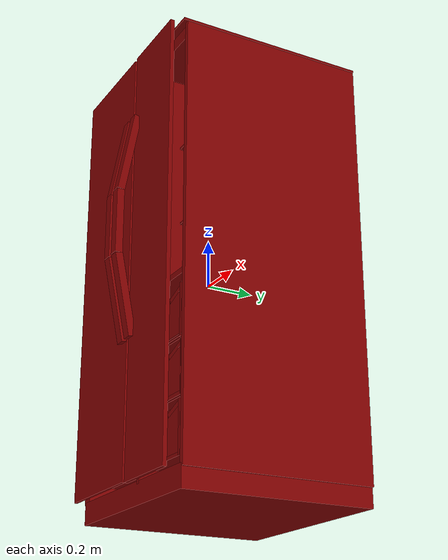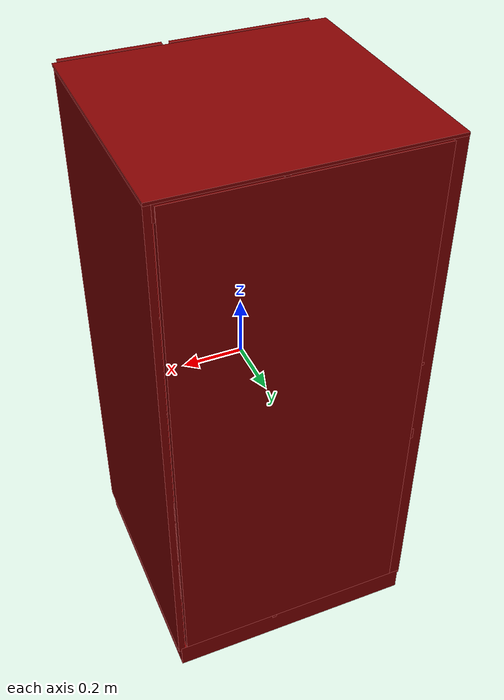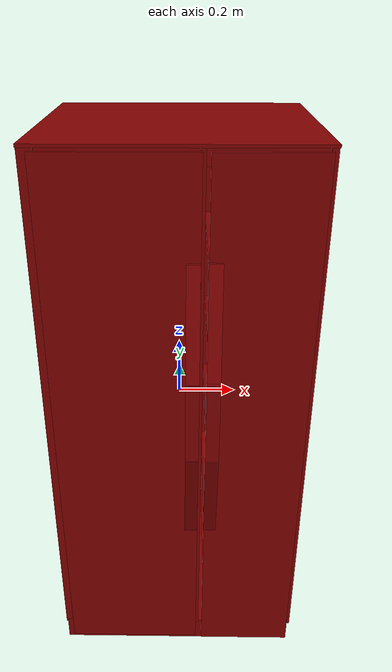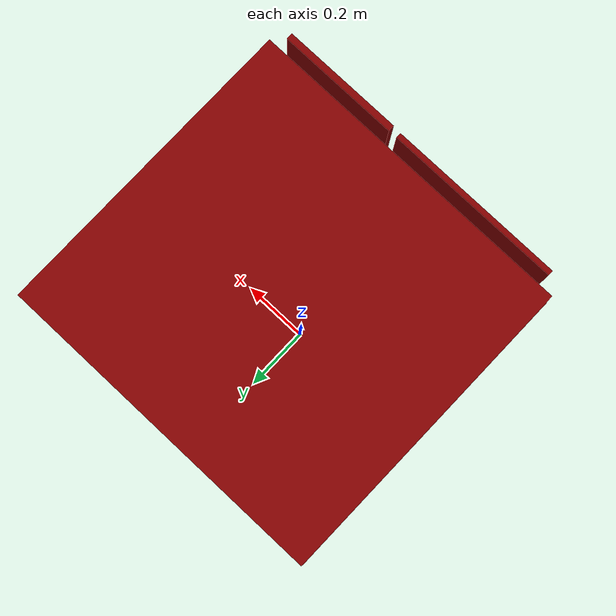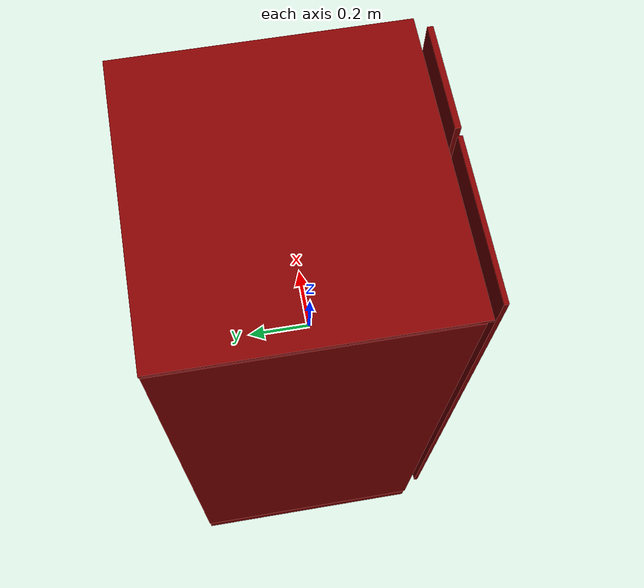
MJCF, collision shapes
<mujoco model="model">
  <compiler angle="radian"/>
  <asset>
    <mesh file="visuals/Body001.obj" name="Body001_vis"/>
    <mesh file="visuals/Door001.obj" name="Door001_vis"/>
    <mesh file="visuals/Door002.obj" name="Door002_vis"/>
    <mesh file="visuals/Drawer001_Clear.obj" name="Drawer001_Clear_vis"/>
    <mesh file="visuals/Drawer002_Clear.obj" name="Drawer002_Clear_vis"/>
    <mesh file="visuals/Drawer003.obj" name="Drawer003_vis"/>
    <mesh file="visuals/Drawer004.obj" name="Drawer004_vis"/>
    <mesh file="visuals/Drawer005.obj" name="Drawer005_vis"/>
    <mesh file="visuals/Drawer006.obj" name="Drawer006_vis"/>
    <mesh file="visuals/Drawer007.obj" name="Drawer007_vis"/>
    <mesh file="visuals/Drawer008.obj" name="Drawer008_vis"/>
    <texture file="visuals/T_BC001.png" name="Body001_material" type="2d"/>
    <material name="Body001_material" rgba="1 1 1 1.0" texture="Body001_material" shininess="0.4472135901451111" specular="0.3103448502657381"/>
    <texture file="visuals/T_BC001.png" name="Door001_material" type="2d"/>
    <material name="Door001_material" rgba="1 1 1 1.0" texture="Door001_material" shininess="0.4472135901451111" specular="0.3103448502657381"/>
    <texture file="visuals/T_BC001.png" name="Door002_material" type="2d"/>
    <material name="Door002_material" rgba="1 1 1 1.0" texture="Door002_material" shininess="0.4472135901451111" specular="0.3103448502657381"/>
    <material name="Drawer001_Clear_material" rgba="1.0 1.0 1.0 0.2653976380825043" shininess="0.4472135901451111" specular="0.3103448502657381"/>
    <material name="Drawer002_Clear_material" rgba="1.0 1.0 1.0 0.2653976380825043" shininess="0.4472135901451111" specular="0.3103448502657381"/>
    <texture file="visuals/T_BC001.png" name="Drawer003_material" type="2d"/>
    <material name="Drawer003_material" rgba="1 1 1 1.0" texture="Drawer003_material" shininess="0.4472135901451111" specular="0.3103448502657381"/>
    <texture file="visuals/T_BC001.png" name="Drawer004_material" type="2d"/>
    <material name="Drawer004_material" rgba="1 1 1 1.0" texture="Drawer004_material" shininess="0.4472135901451111" specular="0.3103448502657381"/>
    <texture file="visuals/T_BC001.png" name="Drawer005_material" type="2d"/>
    <material name="Drawer005_material" rgba="1 1 1 1.0" texture="Drawer005_material" shininess="0.4472135901451111" specular="0.3103448502657381"/>
    <texture file="visuals/T_BC001.png" name="Drawer006_material" type="2d"/>
    <material name="Drawer006_material" rgba="1 1 1 1.0" texture="Drawer006_material" shininess="0.4472135901451111" specular="0.3103448502657381"/>
    <texture file="visuals/T_BC001.png" name="Drawer007_material" type="2d"/>
    <material name="Drawer007_material" rgba="1 1 1 1.0" texture="Drawer007_material" shininess="0.4472135901451111" specular="0.3103448502657381"/>
    <texture file="visuals/T_BC001.png" name="Drawer008_material" type="2d"/>
    <material name="Drawer008_material" rgba="1 1 1 1.0" texture="Drawer008_material" shininess="0.4472135901451111" specular="0.3103448502657381"/>
  </asset>
  <default>
    <default class="visual">
      <geom conaffinity="0" contype="0" group="1" type="mesh"/>
    </default>
    <default class="collision">
      <geom group="0" rgba="0.5 0 0 0.5"/>
    </default>
    <default class="spawn">
      <geom group="0" rgba="1 1 1 0.5" contype="0" conaffinity="0"/>
      <site group="0" rgba="1 1 1 0.5"/>
    </default>
    <default class="region">
      <geom group="1" conaffinity="0" contype="0" rgba="0 1 0 0"/>
    </default>
  </default>
  <worldbody>
    <body>
      <body name="object">
        <geom mesh="Body001_vis" type="mesh" solimp="0.998 0.998 0.001" solref="0.001 1" density="100" friction="0.95 0.3 0.1" class="visual" material="Body001_material"/>
        <geom class="collision" type="box" pos="-0.003055 0.071175 -0.886040" size="0.42254406213760376 0.3943433463573456 0.044781748205423355" quat="1.0 0.0 0.0 0.0"/>
        <geom class="collision" type="box" pos="-0.408601 0.071175 0.033476" size="0.021828489378094673 0.39434152841567993 0.8861522674560547" quat="1.0 0.0 0.0 0.0"/>
        <geom class="collision" type="box" pos="0.418377 0.071175 0.033476" size="0.010383921675384045 0.39431092143058777 0.8861758708953857" quat="1.0 0.0 0.0 0.0"/>
        <geom class="collision" type="box" pos="0.004228 0.455715 0.037261" size="0.39516299962997437 0.011107896454632282 0.8771654367446899" quat="1.0 0.0 0.0 0.0"/>
        <geom class="collision" type="box" pos="-0.000058 0.064919 0.926469" size="0.4288399815559387 0.40311184525489807 0.004484101198613644" quat="1.0 0.0 0.0 0.0"/>
        <geom class="collision" type="box" pos="0.069767 0.071175 0.033476" size="0.007711742073297501 0.394353449344635 0.8863192200660706" quat="1.0 0.0 0.0 0.0"/>
        <geom class="collision" type="box" pos="-0.163365 0.084764 0.177211" size="0.2366134375333786 0.3807549774646759 0.005504774861037731" quat="1.0 0.0 0.0 0.0"/>
        <geom class="collision" type="box" pos="-0.163365 0.084764 -0.116795" size="0.23661182820796967 0.38075974583625793 0.020517824217677116" quat="1.0 0.0 0.0 0.0"/>
        <geom class="collision" type="box" pos="0.251401 0.058927 -0.133869" size="0.15414448082447052 0.3807351887226105 0.01137218065559864" quat="1.0 0.0 0.0 0.0"/>
        <geom class="collision" type="box" pos="-0.169605 0.056461 0.416973" size="0.21129442751407623 0.35190802812576294 0.012146642431616783" quat="1.0 0.0 0.0 0.0"/>
        <geom class="collision" type="box" pos="0.247838 0.109864 0.546151" size="0.15461844205856323 0.2929384708404541 0.004145545419305563" quat="1.0 0.0 0.0 0.0"/>
        <geom class="collision" type="box" pos="0.251269 0.109864 0.204940" size="0.15199317038059235 0.2910923361778259 0.004145502578467131" quat="1.0 0.0 0.0 0.0"/>
        <geom class="collision" type="box" pos="-0.003549 0.076517 0.895617" size="0.42538413405418396 0.3858272135257721 0.02711375616490841" quat="1.0 0.0 0.0 0.0"/>
        <geom class="collision" type="box" pos="-0.175211 -0.001681 -0.355121" size="0.20460020005702972 0.3087306618690491 0.0020589728374034166" quat="1.0 0.0 0.0 0.0"/>
        <geom class="collision" type="box" pos="-0.175211 -0.001681 -0.571262" size="0.20460020005702972 0.30873045325279236 0.00205897050909698" quat="1.0 0.0 0.0 0.0"/>
        <geom class="collision" type="box" pos="0.250226 -0.001681 -0.599374" size="0.15879812836647034 0.30873170495033264 0.002058980520814657" quat="1.0 0.0 0.0 0.0"/>
        <geom class="collision" type="box" pos="0.250226 -0.001681 -0.383440" size="0.1587982475757599 0.30873173475265503 0.002058981219306588" quat="1.0 0.0 0.0 0.0"/>
        <body name="Door001">
          <joint axis="0.0 0.0 -1.0" pos="-0.416145 -0.371712 0.027817" limited="true" name="Door001_joint" range="0.0 1.5707963267948966" type="hinge" damping="1" frictionloss="1" armature=".01" stiffness="0.05"/>
          <geom mesh="Door001_vis" type="mesh" solimp="0.998 0.998 0.001" solref="0.001 1" density="100" friction="0.95 0.3 0.1" class="visual" material="Door001_material"/>
          <geom class="collision" type="box" pos="-0.162656 -0.377580 0.033476" size="0.22955015301704407 0.006571868434548378 0.8863376975059509" quat="1.0 0.0 0.0 0.0"/>
          <geom class="collision" type="box" pos="0.045440 -0.454934 0.147930" size="0.02054559253156185 0.015073158778250217 0.13386672735214233" quat="1.0 0.0 0.0 0.0"/>
          <geom class="collision" type="box" pos="0.045440 -0.422987 0.450286" size="0.020545627921819687 0.015073212794959545 0.17567604780197144" quat="0.9959166646003723 -0.09027764201164246 5.8124575437059915e-18 3.734763892659079e-19"/>
          <geom class="collision" type="box" pos="0.045440 -0.420976 -0.151267" size="0.020545627921819687 0.015073210932314396 0.16911983489990234" quat="0.9952443242073059 0.09741028398275375 5.640280312793385e-18 1.4530146072651087e-18"/>
        </body>
        <body name="Door002">
          <joint axis="0.0 0.0 1.0" pos="0.411259 -0.378499 0.027395" limited="true" name="Door002_joint" range="0.0 1.5707963267948966" type="hinge" damping="1" frictionloss="1" armature=".01" stiffness="0.05"/>
          <geom mesh="Door002_vis" type="mesh" solimp="0.998 0.998 0.001" solref="0.001 1" density="100" friction="0.95 0.3 0.1" class="visual" material="Door002_material"/>
          <geom class="collision" type="box" pos="0.247256 -0.378333 0.030779" size="0.15779338777065277 0.008189458400011063 0.8890048861503601" quat="1.0 0.0 0.0 0.0"/>
          <geom class="collision" type="box" pos="0.107994 -0.421046 -0.150913" size="0.020545627921819687 0.015073212794959545 0.16665861010551453" quat="0.9952443242073059 0.09741028398275375 5.640280312793385e-18 1.4530146072651087e-18"/>
          <geom class="collision" type="box" pos="0.107994 -0.422140 0.454918" size="0.020545627921819687 0.015073212794959545 0.17384988069534302" quat="0.9959166646003723 -0.09027764201164246 5.8124575437059915e-18 3.734763892659079e-19"/>
          <geom class="collision" type="box" pos="0.107994 -0.454934 0.147930" size="0.020545611158013344 0.015073185786604881 0.13386684656143188" quat="1.0 0.0 0.0 0.0"/>
        </body>
        <body name="Drawer001_Clear">
          <joint axis="0.0 -1.0 0.0" pos="-0.175046 -0.008141 0.273273" limited="true" name="Drawer001_Clear_joint" range="0.0 0.45" type="slide" damping="1" frictionloss="1" armature=".01" stiffness="0.05"/>
          <geom mesh="Drawer001_Clear_vis" type="mesh" solimp="0.998 0.998 0.001" solref="0.001 1" density="100" friction="0.95 0.3 0.1" class="visual" material="Drawer001_Clear_material"/>
          <geom class="collision" type="box" pos="-0.174730 0.294483 0.277211" size="0.1955537497997284 0.0023311381228268147 0.08908506482839584" quat="1.0 0.0 0.0 0.0"/>
          <geom class="collision" type="box" pos="-0.174730 -0.310531 0.277211" size="0.19555382430553436 0.0023311336990445852 0.08908488601446152" quat="1.0 0.0 0.0 0.0"/>
          <geom class="collision" type="box" pos="-0.370104 -0.008916 0.277211" size="0.0015052409144118428 0.305454283952713 0.089084692299366" quat="1.0 0.0 0.0 0.0"/>
          <geom class="collision" type="box" pos="0.021025 -0.008916 0.277211" size="0.001505241496488452 0.30545371770858765 0.08908451348543167" quat="1.0 0.0 0.0 0.0"/>
          <geom class="collision" type="box" pos="-0.171064 -0.008916 0.191932" size="0.1947062909603119 0.3054531514644623 0.0075452858582139015" quat="1.0 0.0 0.0 0.0"/>
        </body>
        <body name="Drawer002_Clear">
          <joint axis="0.0 -1.0 0.0" pos="-0.175046 -0.008425 0.063579" limited="true" name="Drawer002_Clear_joint" range="0.0 0.45" type="slide" damping="1" frictionloss="1" armature=".01" stiffness="0.05"/>
          <geom mesh="Drawer002_Clear_vis" type="mesh" solimp="0.998 0.998 0.001" solref="0.001 1" density="100" friction="0.95 0.3 0.1" class="visual" material="Drawer002_Clear_material"/>
          <geom class="collision" type="box" pos="-0.171064 -0.008916 -0.036560" size="0.19470636546611786 0.3054525852203369 0.005770187824964523" quat="1.0 0.0 0.0 0.0"/>
          <geom class="collision" type="box" pos="0.021025 -0.008916 0.061646" size="0.0015052432427182794 0.30545201897621155 0.10378534346818924" quat="1.0 0.0 0.0 0.0"/>
          <geom class="collision" type="box" pos="-0.370104 -0.008916 0.061646" size="0.0015052438247948885 0.3054514527320862 0.10378517210483551" quat="1.0 0.0 0.0 0.0"/>
          <geom class="collision" type="box" pos="-0.176061 -0.308036 0.061646" size="0.19554020464420319 0.002331102965399623 0.10378502309322357" quat="1.0 0.0 0.0 0.0"/>
          <geom class="collision" type="box" pos="-0.176061 0.294483 0.061646" size="0.19554027915000916 0.0023310985416173935 0.10378485172986984" quat="1.0 0.0 0.0 0.0"/>
        </body>
        <body name="Drawer003">
          <joint axis="0.0 -1.0 0.0" pos="-0.175046 -0.008312 -0.247819" limited="true" name="Drawer003_joint" range="0.0 0.45" type="slide" damping="1" frictionloss="1" armature=".01" stiffness="0.05"/>
          <geom mesh="Drawer003_vis" type="mesh" solimp="0.998 0.998 0.001" solref="0.001 1" density="100" friction="0.95 0.3 0.1" class="visual" material="Drawer003_material"/>
          <geom class="collision" type="box" pos="-0.175360 0.284418 -0.249110" size="0.19492459297180176 0.012396960519254208 0.10316973924636841" quat="1.0 0.0 0.0 0.0"/>
          <geom class="collision" type="box" pos="-0.175360 -0.298339 -0.262753" size="0.19492465257644653 0.012029588222503662 0.08953393250703812" quat="1.0 0.0 0.0 0.0"/>
          <geom class="collision" type="box" pos="-0.362451 -0.008916 -0.245479" size="0.009158159606158733 0.30544865131378174 0.09953849017620087" quat="1.0 0.0 0.0 0.0"/>
          <geom class="collision" type="box" pos="0.021025 -0.008916 -0.245479" size="0.0015052473172545433 0.30544808506965637 0.09953831881284714" quat="1.0 0.0 0.0 0.0"/>
          <geom class="collision" type="box" pos="-0.171064 -0.008916 -0.342666" size="0.1947070211172104 0.305447518825531 0.008997532539069653" quat="1.0 0.0 0.0 0.0"/>
          <geom class="collision" type="box" pos="-0.296262 -0.298339 -0.169540" size="0.05193275213241577 0.012029588222503662 0.009430548176169395" quat="0.9918231964111328 -3.6667018671278275e-15 0.12761953473091125 1.7146815523005898e-08"/>
          <geom class="collision" type="box" pos="-0.051063 -0.298339 -0.169168" size="0.05193275213241577 0.012029588222503662 0.009430548176169395" quat="0.9903227090835571 -3.844703299894477e-15 -0.138783797621727 -1.8646836963398528e-08"/>
        </body>
        <body name="Drawer004">
          <joint axis="0.0 -1.0 0.0" pos="-0.175046 -0.008312 -0.463958" limited="true" name="Drawer004_joint" range="0.0 0.45" type="slide" damping="1" frictionloss="1" armature=".01" stiffness="0.05"/>
          <geom mesh="Drawer004_vis" type="mesh" solimp="0.998 0.998 0.001" solref="0.001 1" density="100" friction="0.95 0.3 0.1" class="visual" material="Drawer004_material"/>
          <geom class="collision" type="box" pos="-0.175150 0.282800 -0.467795" size="0.19513492286205292 0.014014961197972298 0.09975635260343552" quat="1.0 0.0 0.0 0.0"/>
          <geom class="collision" type="box" pos="-0.175150 -0.297447 -0.479267" size="0.19513501226902008 0.012920749373733997 0.08636489510536194" quat="1.0 0.0 0.0 0.0"/>
          <geom class="collision" type="box" pos="-0.362219 -0.008916 -0.464648" size="0.009390406310558319 0.3054458498954773 0.0966092124581337" quat="1.0 0.0 0.0 0.0"/>
          <geom class="collision" type="box" pos="0.012787 -0.008916 -0.464648" size="0.009743595495820045 0.30544528365135193 0.09660904109477997" quat="1.0 0.0 0.0 0.0"/>
          <geom class="collision" type="box" pos="-0.171064 -0.008916 -0.558503" size="0.19470739364624023 0.30544471740722656 0.008594043552875519" quat="1.0 0.0 0.0 0.0"/>
          <geom class="collision" type="box" pos="-0.307735 -0.298339 -0.384055" size="0.05193274840712547 0.012029588222503662 0.00943054910749197" quat="0.9920896887779236 -2.2518929944500762e-15 0.1255311369895935 1.6866216867583717e-08"/>
          <geom class="collision" type="box" pos="-0.035250 -0.298339 -0.383373" size="0.05193275213241577 0.012029588222503662 0.00943054724484682" quat="0.9922551512718201 -6.364841464344623e-15 -0.12421657890081406 -1.6689604365183186e-08"/>
        </body>
        <body name="Drawer005">
          <joint axis="0.0 -1.0 0.0" pos="-0.175046 -0.008312 -0.679096" limited="true" name="Drawer005_joint" range="0.0 0.45" type="slide" damping="1" frictionloss="1" armature=".01" stiffness="0.05"/>
          <geom mesh="Drawer005_vis" type="mesh" solimp="0.998 0.998 0.001" solref="0.001 1" density="100" friction="0.95 0.3 0.1" class="visual" material="Drawer005_material"/>
          <geom class="collision" type="box" pos="-0.175264 -0.008916 -0.778051" size="0.1947074681520462 0.3054441511631012 0.00617908826097846" quat="1.0 0.0 0.0 0.0"/>
          <geom class="collision" type="box" pos="0.012678 -0.008916 -0.686611" size="0.009852822870016098 0.30544358491897583 0.09660852700471878" quat="1.0 0.0 0.0 0.0"/>
          <geom class="collision" type="box" pos="-0.362290 -0.008916 -0.686611" size="0.00931952241808176 0.30544301867485046 0.09660835564136505" quat="1.0 0.0 0.0 0.0"/>
          <geom class="collision" type="box" pos="-0.175150 -0.297688 -0.692554" size="0.19513551890850067 0.012679442763328552 0.0905904546380043" quat="1.0 0.0 0.0 0.0"/>
          <geom class="collision" type="box" pos="-0.175150 0.283241 -0.686611" size="0.19513559341430664 0.013573204167187214 0.09660802036523819" quat="1.0 0.0 0.0 0.0"/>
          <geom class="collision" type="box" pos="-0.307735 -0.298339 -0.597628" size="0.05193274840712547 0.012029588222503662 0.00943054910749197" quat="0.9920896887779236 -2.2518929944500762e-15 0.1255311369895935 1.6866216867583717e-08"/>
          <geom class="collision" type="box" pos="-0.035250 -0.298339 -0.596946" size="0.05193275213241577 0.012029588222503662 0.00943054724484682" quat="0.9922551512718201 -6.364841464344623e-15 -0.12421657890081406 -1.6689604365183186e-08"/>
        </body>
        <body name="Drawer006">
          <joint axis="0.0 -1.0 0.0" pos="0.250549 -0.008312 -0.276398" limited="true" name="Drawer006_joint" range="0.0 0.45" type="slide" damping="1" frictionloss="1" armature=".01" stiffness="0.05"/>
          <geom mesh="Drawer006_vis" type="mesh" solimp="0.998 0.998 0.001" solref="0.001 1" density="100" friction="0.95 0.3 0.1" class="visual" material="Drawer006_material"/>
          <geom class="collision" type="box" pos="0.247706 0.284834 -0.291247" size="0.13340070843696594 0.011980605311691761 0.08903960138559341" quat="1.0 0.0 0.0 0.0"/>
          <geom class="collision" type="box" pos="0.247706 -0.298521 -0.289722" size="0.1334020048379898 0.011847171001136303 0.08554389327764511" quat="1.0 0.0 0.0 0.0"/>
          <geom class="collision" type="box" pos="0.121023 -0.008916 -0.274762" size="0.005032455548644066 0.305440217256546 0.10350235551595688" quat="1.0 0.0 0.0 0.0"/>
          <geom class="collision" type="box" pos="0.378149 -0.008916 -0.274762" size="0.0056787580251693726 0.30543965101242065 0.10350218415260315" quat="1.0 0.0 0.0 0.0"/>
          <geom class="collision" type="box" pos="0.251879 -0.018564 -0.368653" size="0.13306187093257904 0.29579031467437744 0.0017353715375065804" quat="1.0 0.0 0.0 0.0"/>
          <geom class="collision" type="box" pos="0.169292 -0.298339 -0.198928" size="0.05193275213241577 0.012029588222503662 0.009430548176169395" quat="0.9891068339347839 -3.1731258161256165e-15 0.14719927310943604 1.9777530724240933e-08"/>
          <geom class="collision" type="box" pos="0.334571 -0.298339 -0.200446" size="0.05193275585770607 0.012029588222503662 0.009430548176169395" quat="0.985614538192749 -5.7940937238257304e-15 -0.16900873184204102 -2.2707819624656622e-08"/>
        </body>
        <body name="Drawer007">
          <joint axis="0.0 -1.0 0.0" pos="0.250549 -0.008312 -0.492537" limited="true" name="Drawer007_joint" range="0.0 0.45" type="slide" damping="1" frictionloss="1" armature=".01" stiffness="0.05"/>
          <geom mesh="Drawer007_vis" type="mesh" solimp="0.998 0.998 0.001" solref="0.001 1" density="100" friction="0.95 0.3 0.1" class="visual" material="Drawer007_material"/>
          <geom class="collision" type="box" pos="0.250359 -0.018564 -0.587888" size="0.13429798185825348 0.2957897484302521 0.007689005695283413" quat="1.0 0.0 0.0 0.0"/>
          <geom class="collision" type="box" pos="0.384232 -0.008916 -0.490365" size="0.001505254884250462 0.30543795228004456 0.10117866098880768" quat="1.0 0.0 0.0 0.0"/>
          <geom class="collision" type="box" pos="0.116395 -0.008916 -0.490365" size="0.001505258260294795 0.3054374158382416 0.10117848962545395" quat="1.0 0.0 0.0 0.0"/>
          <geom class="collision" type="box" pos="0.249616 -0.308036 -0.506515" size="0.13340169191360474 0.0023309774696826935 0.08765426278114319" quat="1.0 0.0 0.0 0.0"/>
          <geom class="collision" type="box" pos="0.249616 0.284834 -0.490365" size="0.13340258598327637 0.011980585753917694 0.10117816179990768" quat="1.0 0.0 0.0 0.0"/>
          <geom class="collision" type="box" pos="0.168043 -0.298339 -0.415794" size="0.05193275213241577 0.012029588222503662 0.009430548176169395" quat="0.9891068339347839 -3.1731258161256165e-15 0.14719927310943604 1.9777530724240933e-08"/>
          <geom class="collision" type="box" pos="0.333021 -0.298339 -0.417398" size="0.05193275585770607 0.012029588222503662 0.009430548176169395" quat="0.985614538192749 -5.7940937238257304e-15 -0.16900873184204102 -2.2707819624656622e-08"/>
        </body>
        <body name="Drawer008">
          <joint axis="0.0 -1.0 0.0" pos="0.250549 -0.008312 -0.707676" limited="true" name="Drawer008_joint" range="0.0 0.45" type="slide" damping="1" frictionloss="1" armature=".01" stiffness="0.05"/>
          <geom mesh="Drawer008_vis" type="mesh" solimp="0.998 0.998 0.001" solref="0.001 1" density="100" friction="0.95 0.3 0.1" class="visual" material="Drawer008_material"/>
          <geom class="collision" type="box" pos="0.252295 -0.018564 -0.803822" size="0.13306231796741486 0.29578691720962524 0.0067784227430820465" quat="1.0 0.0 0.0 0.0"/>
          <geom class="collision" type="box" pos="0.378565 -0.008916 -0.707210" size="0.0056787640787661076 0.3054351508617401 0.10117780417203903" quat="1.0 0.0 0.0 0.0"/>
          <geom class="collision" type="box" pos="0.114901 -0.008916 -0.707210" size="0.0015052610542625189 0.30543458461761475 0.1011776328086853" quat="1.0 0.0 0.0 0.0"/>
          <geom class="collision" type="box" pos="0.247737 -0.308036 -0.720605" size="0.13345694541931152 0.0023309600073844194 0.08960815519094467" quat="1.0 0.0 0.0 0.0"/>
          <geom class="collision" type="box" pos="0.247737 0.284834 -0.707210" size="0.1334570050239563 0.011980369687080383 0.10117729753255844" quat="1.0 0.0 0.0 0.0"/>
          <geom class="collision" type="box" pos="0.168043 -0.298339 -0.630855" size="0.05193275213241577 0.012029588222503662 0.009430548176169395" quat="0.9891068339347839 -3.1731258161256165e-15 0.14719927310943604 1.9777530724240933e-08"/>
          <geom class="collision" type="box" pos="0.333021 -0.298339 -0.632460" size="0.05193275585770607 0.012029588222503662 0.009430548176169395" quat="0.985614538192749 -5.7940937238257304e-15 -0.16900873184204102 -2.2707819624656622e-08"/>
        </body>
        <geom class="region" name="reg_main" type="box" pos="0.0 0.040539500000000006 0.0" size="0.430464 0.4275385 0.93232"/>
      </body>
    </body>
  </worldbody>
  <actuator>
    <motor name="Door001_joint_actuator" joint="Door001_joint" gear="50"/>
    <motor name="Door002_joint_actuator" joint="Door002_joint" gear="50"/>
    <motor name="Drawer001_Clear_joint_actuator" joint="Drawer001_Clear_joint" gear="50"/>
    <motor name="Drawer002_Clear_joint_actuator" joint="Drawer002_Clear_joint" gear="50"/>
    <motor name="Drawer003_joint_actuator" joint="Drawer003_joint" gear="50"/>
    <motor name="Drawer004_joint_actuator" joint="Drawer004_joint" gear="50"/>
    <motor name="Drawer005_joint_actuator" joint="Drawer005_joint" gear="50"/>
    <motor name="Drawer006_joint_actuator" joint="Drawer006_joint" gear="50"/>
    <motor name="Drawer007_joint_actuator" joint="Drawer007_joint" gear="50"/>
    <motor name="Drawer008_joint_actuator" joint="Drawer008_joint" gear="50"/>
  </actuator>
</mujoco>
